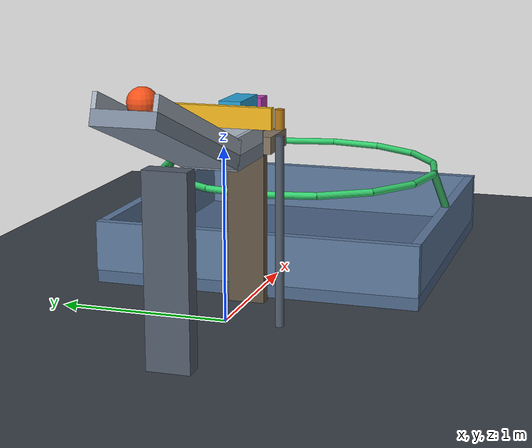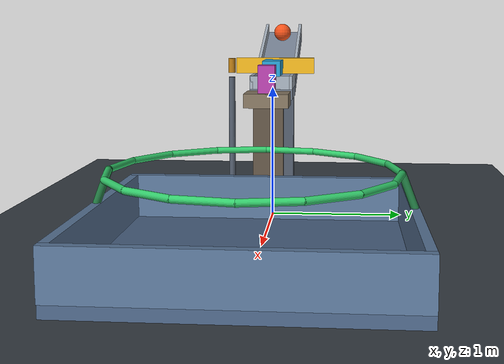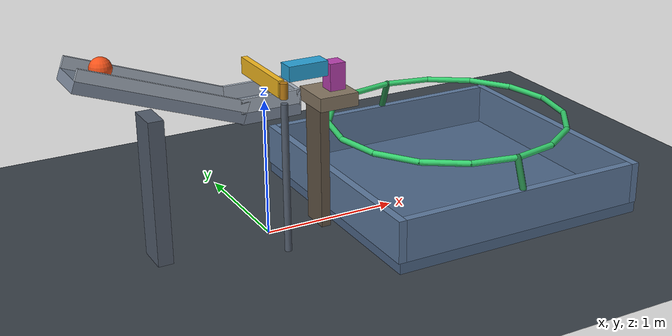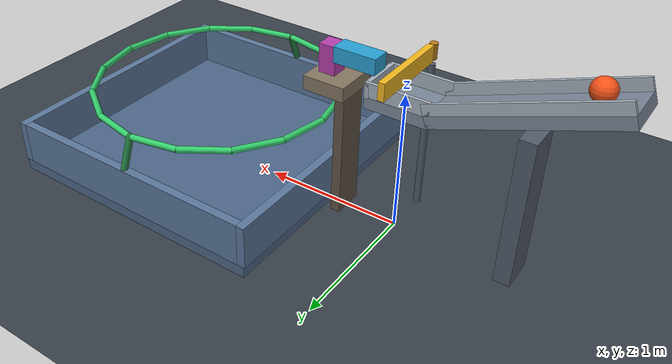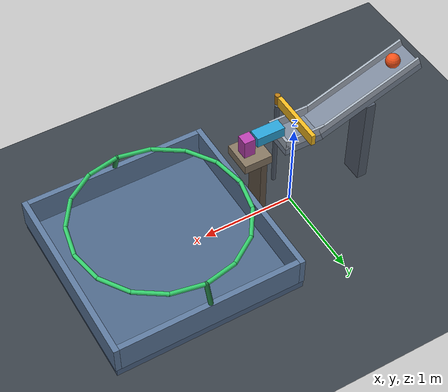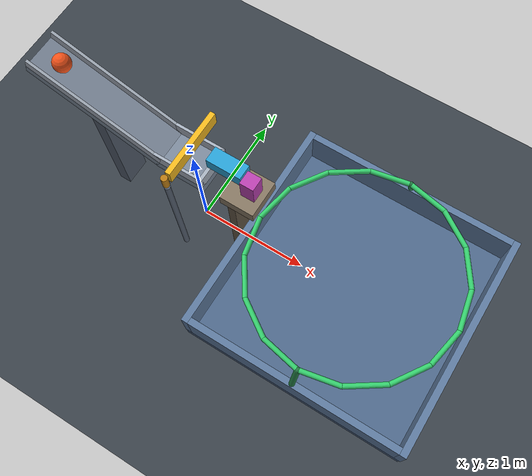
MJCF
<mujoco model="ball_paddle_slider_drop">
  <compiler angle="degree" autolimits="true"/>
  <option timestep="0.002" gravity="0 0 -9.81" integrator="implicitfast" solver="Newton" iterations="100" cone="elliptic"/>
  <statistic center="0.65 0 0.75" extent="3.5"/>

  <visual>
    <headlight ambient="0.35 0.35 0.35" diffuse="0.7 0.7 0.7" specular="0.2 0.2 0.2"/>
    <quality shadowsize="2048"/>
  </visual>

  <worldbody>
    <light name="key_light" pos="0 -3 5" dir="0 0.4 -1"/>
    <camera name="overview" pos="0.65 -5 3.1" xyaxes="1 0 0 0 0.45 0.893"/>
    <geom name="floor" type="plane" size="5 5 0.1" rgba="0.22 0.25 0.28 1" condim="6" priority="1" friction="1 0.02 0.03" solref="0.015 1"/>

    <!-- The ball's initial contact point is one metre uphill from the ramp's lower end. -->
    <body name="ramp">
      <geom name="ramp_deck" type="box" pos="-0.777496 0 1.167624" quat="0.984807753 0 0.173648178 0" size="0.6 0.162 0.04" rgba="0.48 0.53 0.60 1" condim="6" priority="1" friction="0.8 0.005 0.0005"/>
      <geom name="ramp_rail_left" type="box" pos="-0.750135 0.15 1.242800" quat="0.984807753 0 0.173648178 0" size="0.6 0.012 0.04" rgba="0.65 0.69 0.74 1" condim="6" priority="1" friction="0.7 0.005 0.0005"/>
      <geom name="ramp_rail_right" type="box" pos="-0.750135 -0.15 1.242800" quat="0.984807753 0 0.173648178 0" size="0.6 0.012 0.04" rgba="0.65 0.69 0.74 1" condim="6" priority="1" friction="0.7 0.005 0.0005"/>
      <geom name="ramp_runout" type="box" pos="-0.02 0 0.96" size="0.22 0.162 0.04" rgba="0.48 0.53 0.60 1" condim="6" priority="2" friction="0.8 0.01 0.012"/>
      <geom name="ramp_runout_left" type="box" pos="-0.02 0.15 1.05" size="0.22 0.012 0.05" rgba="0.65 0.69 0.74 1" condim="6" priority="2" friction="0.8 0.01 0.015"/>
      <geom name="ramp_runout_right" type="box" pos="-0.02 -0.15 1.05" size="0.22 0.012 0.05" rgba="0.65 0.69 0.74 1" condim="6" priority="2" friction="0.8 0.01 0.015"/>
      <geom name="ramp_ball_stop" type="box" pos="0.185 0 1.045" size="0.015 0.162 0.055" rgba="0.65 0.69 0.74 1" condim="6" priority="2" friction="0.9 0.01 0.02" solref="0.02 1"/>
      <geom name="ramp_support" type="box" pos="-0.82 0 0.52" size="0.055 0.12 0.52" rgba="0.32 0.36 0.42 1"/>
      <geom name="ramp_pivot_support" type="cylinder" pos="0 -0.32 0.54" size="0.025 0.54" rgba="0.32 0.36 0.42 1"/>
    </body>

    <body name="ball" pos="-1.114041 0 1.412497">
      <freejoint name="ball_free"/>
      <geom name="ball_sphere" type="sphere" size="0.075" mass="1.2" rgba="0.95 0.32 0.10 1" condim="6" friction="0.8 0.005 0.0005" solref="0.012 1"/>
    </body>

    <!-- The gate swings clockwise. Its bottom clears the ball-stop and runout rails. -->
    <body name="paddle" pos="0 -0.32 1.17">
      <joint name="paddle_hinge" type="hinge" axis="0 0 1" range="-70 0" damping="0.025" frictionloss="0.005"/>
      <geom name="paddle_arm" type="box" pos="0 0.34 0" size="0.022 0.30 0.06" mass="0.22" rgba="0.95 0.72 0.12 1" friction="0.2 0.005 0.001" solref="0.012 1"/>
      <geom name="paddle_hub" type="cylinder" size="0.028 0.055" mass="0.02" rgba="0.72 0.48 0.08 1" friction="0.2 0.005 0.001"/>
    </body>

    <!-- No actuator or spring drives this striker: the paddle supplies its impulse. -->
    <body name="slider" pos="0.325 0.025 1.17">
      <joint name="slider_slide" type="slide" axis="1 0 0" range="0 0.36" damping="0.65" frictionloss="0.35"/>
      <geom name="slider_striker" type="box" size="0.15 0.065 0.055" mass="0.30" rgba="0.16 0.63 0.83 1" friction="0.3 0.005 0.001" solref="0.012 1"/>
    </body>

    <body name="ledge">
      <geom name="ledge_platform" type="box" pos="0.50 0 0.95" size="0.15 0.16 0.05" rgba="0.52 0.46 0.38 1" condim="6" priority="1" friction="0.55 0.01 0.002"/>
      <geom name="ledge_column" type="box" pos="0.405 0 0.45" size="0.035 0.11 0.45" rgba="0.38 0.33 0.27 1"/>
    </body>

    <body name="block" pos="0.54 0 1.101">
      <freejoint name="block_free"/>
      <geom name="block_payload" type="box" size="0.06 0.06 0.10" mass="0.12" rgba="0.72 0.25 0.68 1" condim="6" friction="0.55 0.02 0.003" solref="0.02 1"/>
    </body>

    <!-- A horizontal, open hoop; the capsules form its rim, not a solid disk. -->
    <body name="hoop" pos="1.5 0 0.60">
      <geom name="hoop_rim_01" type="capsule" fromto="0.9 0 0 0.831492 0.344415 0" size="0.022" rgba="0.20 0.80 0.42 1" friction="0.3 0.01 0.002"/>
      <geom name="hoop_rim_02" type="capsule" fromto="0.831492 0.344415 0 0.636396 0.636396 0" size="0.022" rgba="0.20 0.80 0.42 1" friction="0.3 0.01 0.002"/>
      <geom name="hoop_rim_03" type="capsule" fromto="0.636396 0.636396 0 0.344415 0.831492 0" size="0.022" rgba="0.20 0.80 0.42 1" friction="0.3 0.01 0.002"/>
      <geom name="hoop_rim_04" type="capsule" fromto="0.344415 0.831492 0 0 0.9 0" size="0.022" rgba="0.20 0.80 0.42 1" friction="0.3 0.01 0.002"/>
      <geom name="hoop_rim_05" type="capsule" fromto="0 0.9 0 -0.344415 0.831492 0" size="0.022" rgba="0.20 0.80 0.42 1" friction="0.3 0.01 0.002"/>
      <geom name="hoop_rim_06" type="capsule" fromto="-0.344415 0.831492 0 -0.636396 0.636396 0" size="0.022" rgba="0.20 0.80 0.42 1" friction="0.3 0.01 0.002"/>
      <geom name="hoop_rim_07" type="capsule" fromto="-0.636396 0.636396 0 -0.831492 0.344415 0" size="0.022" rgba="0.20 0.80 0.42 1" friction="0.3 0.01 0.002"/>
      <geom name="hoop_rim_08" type="capsule" fromto="-0.831492 0.344415 0 -0.9 0 0" size="0.022" rgba="0.20 0.80 0.42 1" friction="0.3 0.01 0.002"/>
      <geom name="hoop_rim_09" type="capsule" fromto="-0.9 0 0 -0.831492 -0.344415 0" size="0.022" rgba="0.20 0.80 0.42 1" friction="0.3 0.01 0.002"/>
      <geom name="hoop_rim_10" type="capsule" fromto="-0.831492 -0.344415 0 -0.636396 -0.636396 0" size="0.022" rgba="0.20 0.80 0.42 1" friction="0.3 0.01 0.002"/>
      <geom name="hoop_rim_11" type="capsule" fromto="-0.636396 -0.636396 0 -0.344415 -0.831492 0" size="0.022" rgba="0.20 0.80 0.42 1" friction="0.3 0.01 0.002"/>
      <geom name="hoop_rim_12" type="capsule" fromto="-0.344415 -0.831492 0 0 -0.9 0" size="0.022" rgba="0.20 0.80 0.42 1" friction="0.3 0.01 0.002"/>
      <geom name="hoop_rim_13" type="capsule" fromto="0 -0.9 0 0.344415 -0.831492 0" size="0.022" rgba="0.20 0.80 0.42 1" friction="0.3 0.01 0.002"/>
      <geom name="hoop_rim_14" type="capsule" fromto="0.344415 -0.831492 0 0.636396 -0.636396 0" size="0.022" rgba="0.20 0.80 0.42 1" friction="0.3 0.01 0.002"/>
      <geom name="hoop_rim_15" type="capsule" fromto="0.636396 -0.636396 0 0.831492 -0.344415 0" size="0.022" rgba="0.20 0.80 0.42 1" friction="0.3 0.01 0.002"/>
      <geom name="hoop_rim_16" type="capsule" fromto="0.831492 -0.344415 0 0.9 0 0" size="0.022" rgba="0.20 0.80 0.42 1" friction="0.3 0.01 0.002"/>
      <geom name="hoop_support_left" type="capsule" fromto="0 0.9 0 0 0.98 -0.21" size="0.025" rgba="0.13 0.48 0.26 1"/>
      <geom name="hoop_support_right" type="capsule" fromto="0 -0.9 0 0 -0.98 -0.21" size="0.025" rgba="0.13 0.48 0.26 1"/>
    </body>

    <body name="box" pos="1.5 0 0">
      <geom name="box_bottom" type="box" pos="0 0 0.04" size="1.01 1.01 0.04" rgba="0.30 0.40 0.53 1" condim="6" priority="2" friction="0.9 0.03 0.025" solref="0.02 1"/>
      <geom name="box_wall_back" type="box" pos="0.99 0 0.235" size="0.03 1.01 0.155" rgba="0.36 0.47 0.61 1" condim="6" priority="2" friction="0.9 0.03 0.025" solref="0.02 1"/>
      <geom name="box_wall_front" type="box" pos="-0.99 0 0.235" size="0.03 1.01 0.155" rgba="0.36 0.47 0.61 1" condim="6" priority="2" friction="0.9 0.03 0.025" solref="0.02 1"/>
      <geom name="box_wall_left" type="box" pos="0 0.98 0.235" size="0.96 0.03 0.155" rgba="0.36 0.47 0.61 1" condim="6" priority="2" friction="0.9 0.03 0.025" solref="0.02 1"/>
      <geom name="box_wall_right" type="box" pos="0 -0.98 0.235" size="0.96 0.03 0.155" rgba="0.36 0.47 0.61 1" condim="6" priority="2" friction="0.9 0.03 0.025" solref="0.02 1"/>
    </body>
  </worldbody>

  <keyframe>
    <key name="start" qpos="-1.114041 0 1.412497 1 0 0 0 0 0 0.54 0 1.101 1 0 0 0" qvel="0 0 0 0 0 0 0 0 0 0 0 0 0 0"/>
  </keyframe>
</mujoco>
